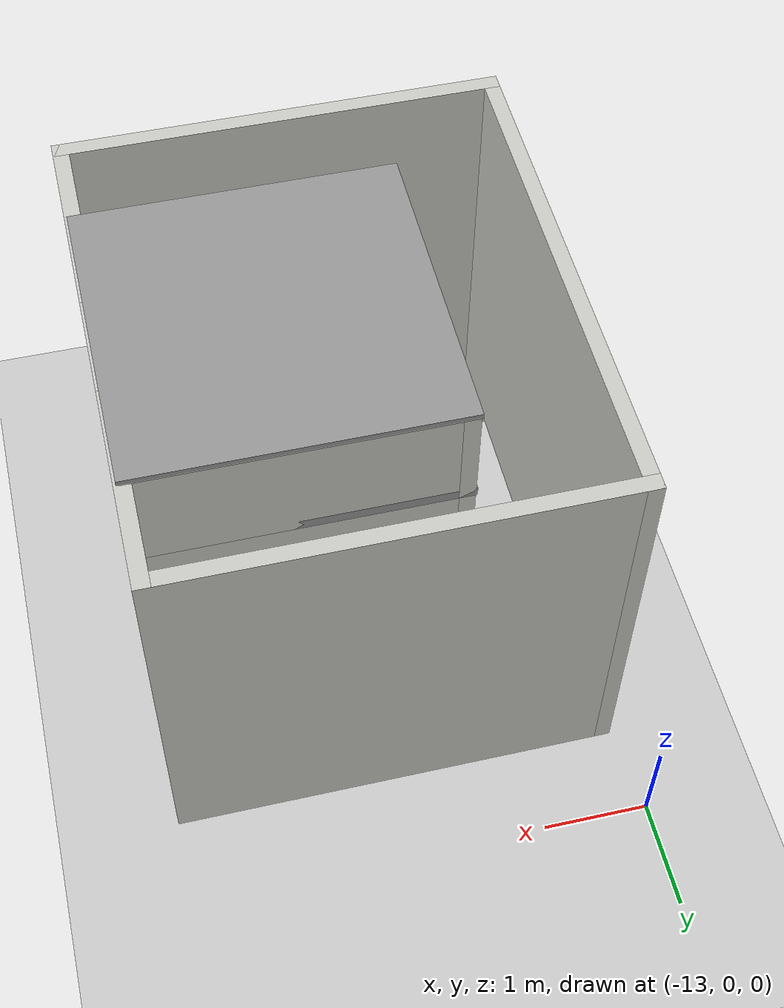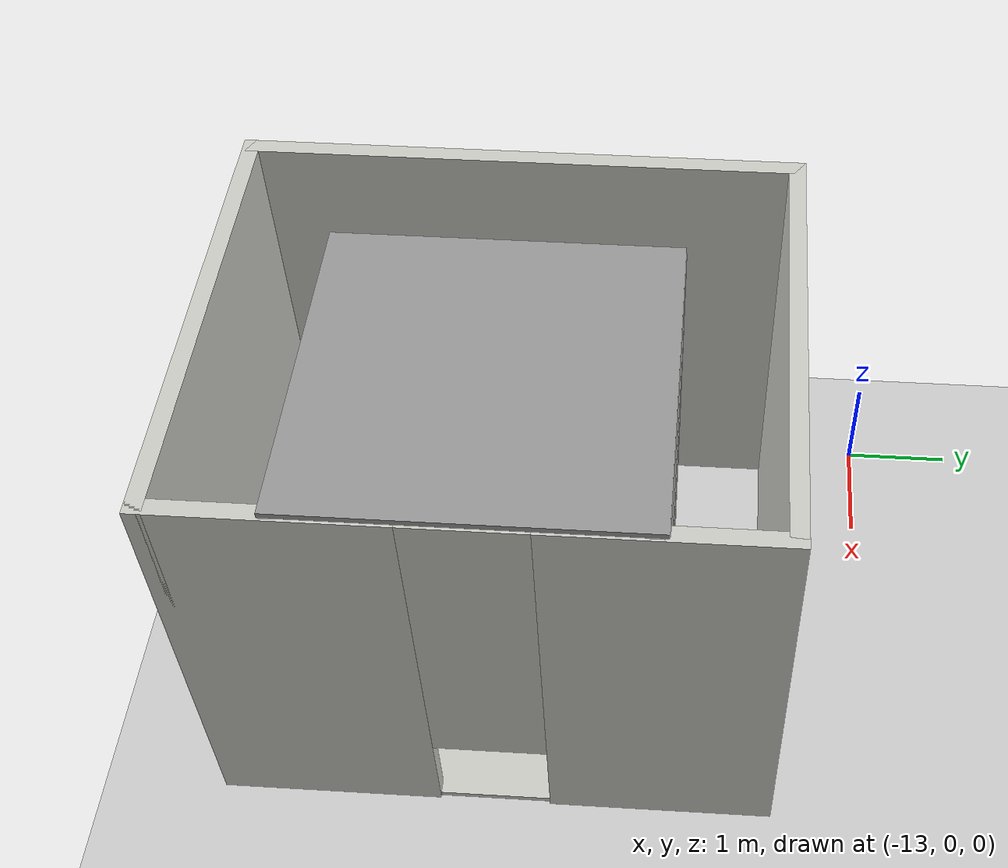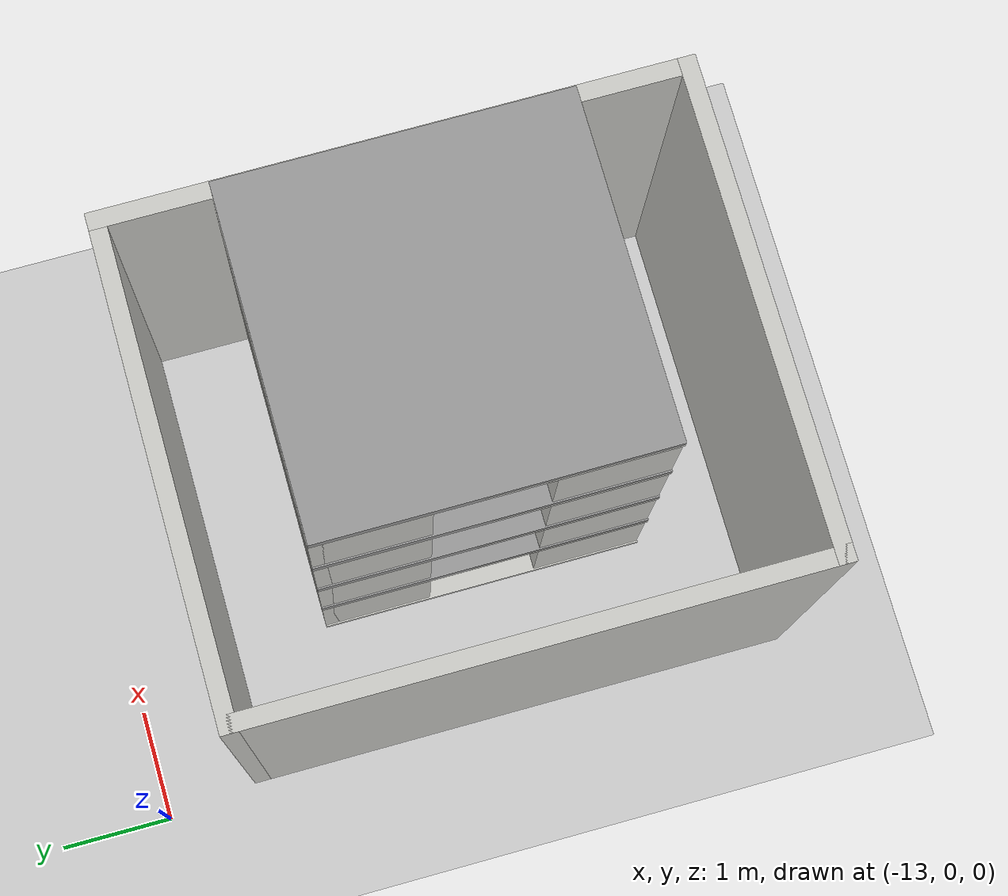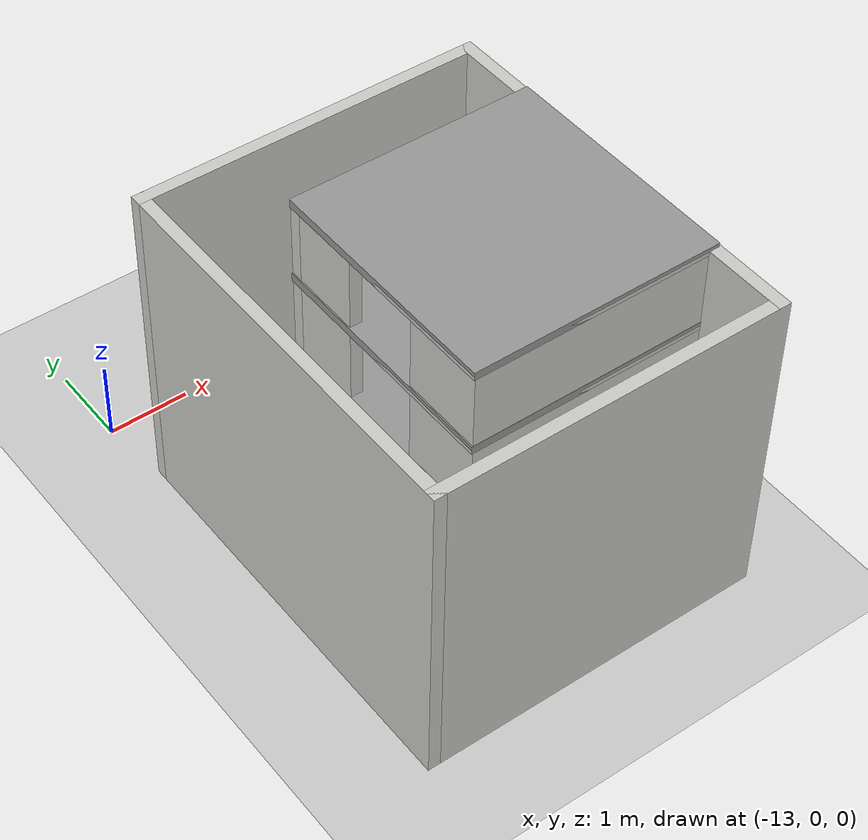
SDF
<sdf version="1.7">
 <world name="default">
  <model name="ground_plane">
   <static>1</static>
   <link name="link">
    <collision name="collision">
     <geometry><plane><normal>0 0 1</normal><size>100 100</size></plane></geometry>
     <surface><friction><ode><mu>100</mu><mu2>50</mu2></ode></friction></surface>
    </collision>
    <visual name="visual">
     <cast_shadows>0</cast_shadows>
     <geometry><plane><normal>0 0 1</normal><size>100 100</size></plane></geometry>
     <material>
      <script><uri>file://media/materials/scripts/gazebo.material</uri><name>Gazebo/Grey</name></script>
     </material>
    </visual>
   </link>
   <pose>-9.56672 -8.6074 0 0 -0 0</pose>
  </model>
  <model name="apart4">
   <pose>-8.28499 -5.32183 0 0 0 -1.57079</pose>
   <link name="Floor_10">
    <collision name="Floor_10_Collision">
     <geometry><box><size>3.005 3.015 0.1</size></box></geometry>
     <pose>0 0 0.05 0 -0 0</pose>
    </collision>
    <visual name="Floor_10_Visual">
     <pose>0 0 0.05 0 -0 0</pose>
     <geometry><box><size>3.005 3.015 0.1</size></box></geometry>
     <material>
      <script><uri>file://media/materials/scripts/gazebo.material</uri><name>Gazebo/Grey</name></script>
      <ambient>1 1 1 1</ambient>
     </material>
     <meta><layer>2</layer></meta>
    </visual>
    <pose>-1.995 -1.885 2 0 -0 0</pose>
   </link>
   <link name="Floor_11">
    <collision name="Floor_11_Collision">
     <geometry><box><size>3.005 3.015 0.1</size></box></geometry>
     <pose>0 0 0.05 0 -0 0</pose>
    </collision>
    <visual name="Floor_11_Visual">
     <pose>0 0 0.05 0 -0 0</pose>
     <geometry><box><size>3.005 3.015 0.1</size></box></geometry>
     <material>
      <script><uri>file://media/materials/scripts/gazebo.material</uri><name>Gazebo/Grey</name></script>
      <ambient>1 1 1 1</ambient>
     </material>
     <meta><layer>3</layer></meta>
    </visual>
    <pose>-1.995 -1.885 3 0 -0 0</pose>
   </link>
   <link name="Floor_12">
    <collision name="Floor_12_Collision">
     <geometry><box><size>3 3.01 0.1</size></box></geometry>
     <pose>0 0 0.05 0 -0 0</pose>
    </collision>
    <visual name="Floor_12_Visual">
     <pose>0 0 0.05 0 -0 0</pose>
     <geometry><box><size>3 3.01 0.1</size></box></geometry>
     <material>
      <script><uri>file://media/materials/scripts/gazebo.material</uri><name>Gazebo/Grey</name></script>
      <ambient>1 1 1 1</ambient>
     </material>
     <meta><layer>4</layer></meta>
    </visual>
    <pose>-1.9925 -1.8875 4 0 -0 0</pose>
   </link>
   <link name="Floor_9">
    <collision name="Floor_9_Collision">
     <geometry><box><size>3.005 3.015 0.1</size></box></geometry>
     <pose>0 0 0.05 0 -0 0</pose>
    </collision>
    <visual name="Floor_9_Visual">
     <pose>0 0 0.05 0 -0 0</pose>
     <geometry><box><size>3.005 3.015 0.1</size></box></geometry>
     <material>
      <script><uri>file://media/materials/scripts/gazebo.material</uri><name>Gazebo/Grey</name></script>
      <ambient>1 1 1 1</ambient>
     </material>
     <meta><layer>1</layer></meta>
    </visual>
    <pose>-1.995 -1.885 1 0 -0 0</pose>
   </link>
   <link name="Wall_100">
    <collision name="Wall_100_Collision">
     <geometry><box><size>3 0.15 1.05</size></box></geometry>
     <pose>0 0 0.525 0 -0 0</pose>
    </collision>
    <visual name="Wall_100_Visual">
     <pose>0 0 0.525 0 -0 0</pose>
     <geometry><box><size>3 0.15 1.05</size></box></geometry>
     <material>
      <script><uri>file://media/materials/scripts/gazebo.material</uri><name>Gazebo/CeilingTiled</name></script>
      <ambient>1 1 1 1</ambient>
     </material>
     <meta><layer>3</layer></meta>
    </visual>
    <pose>-0.5725 -1.8775 3 0 -0 1.5708</pose>
   </link>
   <link name="Wall_101">
    <collision name="Wall_101_Collision">
     <geometry><box><size>3 0.15 1.05</size></box></geometry>
     <pose>0 0 0.525 0 -0 0</pose>
    </collision>
    <visual name="Wall_101_Visual">
     <pose>0 0 0.525 0 -0 0</pose>
     <geometry><box><size>3 0.15 1.05</size></box></geometry>
     <material>
      <script><uri>file://media/materials/scripts/gazebo.material</uri><name>Gazebo/CeilingTiled</name></script>
      <ambient>1 1 1 1</ambient>
     </material>
     <meta><layer>3</layer></meta>
    </visual>
    <pose>-3.4225 -1.8775 3 0 -0 1.5708</pose>
   </link>
   <link name="Wall_102">
    <collision name="Wall_102_Collision">
     <geometry><box><size>1 0.15 1.05</size></box></geometry>
     <pose>0 0 0.525 0 -0 0</pose>
    </collision>
    <visual name="Wall_102_Visual">
     <pose>0 0 0.525 0 -0 0</pose>
     <geometry><box><size>1 0.15 1.05</size></box></geometry>
     <material>
      <script><uri>file://media/materials/scripts/gazebo.material</uri><name>Gazebo/CeilingTiled</name></script>
      <ambient>1 1 1 1</ambient>
     </material>
     <meta><layer>3</layer></meta>
    </visual>
    <pose>-2.9975 -3.3025 3 0 -0 0</pose>
   </link>
   <link name="Wall_103">
    <collision name="Wall_103_Collision">
     <geometry><box><size>1 0.15 1.05</size></box></geometry>
     <pose>0 0 0.525 0 -0 0</pose>
    </collision>
    <visual name="Wall_103_Visual">
     <pose>0 0 0.525 0 -0 0</pose>
     <geometry><box><size>1 0.15 1.05</size></box></geometry>
     <material>
      <script><uri>file://media/materials/scripts/gazebo.material</uri><name>Gazebo/CeilingTiled</name></script>
      <ambient>1 1 1 1</ambient>
     </material>
     <meta><layer>3</layer></meta>
    </visual>
    <pose>-0.9975 -3.3025 3 0 -0 3.14159</pose>
   </link>
   <link name="Wall_104">
    <collision name="Wall_104_Collision">
     <geometry><box><size>3.01 3 0.05</size></box></geometry>
     <pose>0 0 0.025 0 -0 0</pose>
    </collision>
    <visual name="Wall_104_Visual">
     <pose>0 0 0.025 0 -0 0</pose>
     <geometry><box><size>3.01 3 0.05</size></box></geometry>
     <material>
      <script><uri>file://media/materials/scripts/gazebo.material</uri><name>Gazebo/CeilingTiled</name></script>
      <ambient>1 1 1 1</ambient>
     </material>
     <meta><layer>4</layer></meta>
    </visual>
    <pose>-1.9925 -1.8875 4 0 -0 -1.5708</pose>
   </link>
   <link name="Wall_117">
    <pose>-1.9975 -0.4325 0 0 -0 0</pose>
    <visual name="Wall_117_Visual_0">
     <pose>-1.4975 0 2.025 0 -0 0</pose>
     <geometry><box><size>2.005 0.15 4.05</size></box></geometry>
     <material>
      <script><uri>file://media/materials/scripts/gazebo.material</uri><name>Gazebo/CeilingTiled</name></script>
      <ambient>0.760784 0.662745 0.627451 1</ambient>
     </material>
     <meta><layer>0</layer></meta>
    </visual>
    <collision name="Wall_117_Collision_0">
     <geometry><box><size>2.005 0.15 4.05</size></box></geometry>
     <pose>-1.4975 0 2.025 0 -0 0</pose>
    </collision>
    <visual name="Wall_117_Visual_1">
     <pose>1.5025 0 2.025 0 -0 0</pose>
     <geometry><box><size>1.995 0.15 4.05</size></box></geometry>
     <material>
      <script><uri>file://media/materials/scripts/gazebo.material</uri><name>Gazebo/CeilingTiled</name></script>
      <ambient>0.760784 0.662745 0.627451 1</ambient>
     </material>
     <meta><layer>0</layer></meta>
    </visual>
    <collision name="Wall_117_Collision_1">
     <geometry><box><size>1.995 0.15 4.05</size></box></geometry>
     <pose>1.5025 0 2.025 0 -0 0</pose>
    </collision>
    <visual name="Wall_117_Visual_2">
     <pose>0.005 0 2.475 0 -0 0</pose>
     <geometry><box><size>1 0.15 3.15</size></box></geometry>
     <material>
      <script><uri>file://media/materials/scripts/gazebo.material</uri><name>Gazebo/CeilingTiled</name></script>
      <ambient>0.760784 0.662745 0.627451 1</ambient>
     </material>
     <meta><layer>0</layer></meta>
    </visual>
    <collision name="Wall_117_Collision_2">
     <geometry><box><size>1 0.15 3.15</size></box></geometry>
     <pose>0.005 0 2.475 0 -0 0</pose>
    </collision>
   </link>
   <link name="Wall_118">
    <collision name="Wall_118_Collision">
     <geometry><box><size>4.25 0.15 4.05</size></box></geometry>
     <pose>0 0 2.025 0 -0 0</pose>
    </collision>
    <visual name="Wall_118_Visual">
     <pose>0 0 2.025 0 -0 0</pose>
     <geometry><box><size>4.25 0.15 4.05</size></box></geometry>
     <material>
      <script><uri>file://media/materials/scripts/gazebo.material</uri><name>Gazebo/CeilingTiled</name></script>
      <ambient>0.760784 0.662745 0.627451 1</ambient>
     </material>
     <meta><layer>0</layer></meta>
    </visual>
    <pose>0.4275 -2.4825 0 0 -0 -1.5708</pose>
   </link>
   <link name="Wall_119">
    <collision name="Wall_119_Collision">
     <geometry><box><size>5 0.15 4.05</size></box></geometry>
     <pose>0 0 2.025 0 -0 0</pose>
    </collision>
    <visual name="Wall_119_Visual">
     <pose>0 0 2.025 0 -0 0</pose>
     <geometry><box><size>5 0.15 4.05</size></box></geometry>
     <material>
      <script><uri>file://media/materials/scripts/gazebo.material</uri><name>Gazebo/CeilingTiled</name></script>
      <ambient>0.760784 0.662745 0.627451 1</ambient>
     </material>
     <meta><layer>0</layer></meta>
    </visual>
    <pose>-1.9975 -4.5325 0 0 -0 3.14159</pose>
   </link>
   <link name="Wall_120">
    <collision name="Wall_120_Collision">
     <geometry><box><size>4.25 0.15 4.05</size></box></geometry>
     <pose>0 0 2.025 0 -0 0</pose>
    </collision>
    <visual name="Wall_120_Visual">
     <pose>0 0 2.025 0 -0 0</pose>
     <geometry><box><size>4.25 0.15 4.05</size></box></geometry>
     <material>
      <script><uri>file://media/materials/scripts/gazebo.material</uri><name>Gazebo/CeilingTiled</name></script>
      <ambient>0.760784 0.662745 0.627451 1</ambient>
     </material>
     <meta><layer>0</layer></meta>
    </visual>
    <pose>-4.4225 -2.4825 0 0 -0 1.5708</pose>
   </link>
   <link name="Wall_71">
    <collision name="Wall_71_Collision">
     <geometry><box><size>3.01 3 0.05</size></box></geometry>
     <pose>0 0 0.025 0 -0 0</pose>
    </collision>
    <visual name="Wall_71_Visual">
     <pose>0 0 0.025 0 -0 0</pose>
     <geometry><box><size>3.01 3 0.05</size></box></geometry>
     <material>
      <script><uri>file://media/materials/scripts/gazebo.material</uri><name>Gazebo/CeilingTiled</name></script>
      <ambient>1 1 1 1</ambient>
     </material>
     <meta><layer>0</layer></meta>
    </visual>
    <pose>-1.9925 -1.8875 0 0 -0 -1.5708</pose>
   </link>
   <link name="Wall_73">
    <collision name="Wall_73_Collision">
     <geometry><box><size>3 0.15 1</size></box></geometry>
     <pose>0 0 0.5 0 -0 0</pose>
    </collision>
    <visual name="Wall_73_Visual">
     <pose>0 0 0.5 0 -0 0</pose>
     <geometry><box><size>3 0.15 1</size></box></geometry>
     <material>
      <script><uri>file://media/materials/scripts/gazebo.material</uri><name>Gazebo/CeilingTiled</name></script>
      <ambient>1 1 1 1</ambient>
     </material>
     <meta><layer>0</layer></meta>
    </visual>
    <pose>-0.5725 -1.8775 0 0 -0 1.5708</pose>
   </link>
   <link name="Wall_75">
    <collision name="Wall_75_Collision">
     <geometry><box><size>3 0.15 1</size></box></geometry>
     <pose>0 0 0.5 0 -0 0</pose>
    </collision>
    <visual name="Wall_75_Visual">
     <pose>0 0 0.5 0 -0 0</pose>
     <geometry><box><size>3 0.15 1</size></box></geometry>
     <material>
      <script><uri>file://media/materials/scripts/gazebo.material</uri><name>Gazebo/CeilingTiled</name></script>
      <ambient>1 1 1 1</ambient>
     </material>
     <meta><layer>0</layer></meta>
    </visual>
    <pose>-3.4225 -1.8775 0 0 -0 1.5708</pose>
   </link>
   <link name="Wall_85">
    <collision name="Wall_85_Collision">
     <geometry><box><size>1 0.15 1</size></box></geometry>
     <pose>0 0 0.5 0 -0 0</pose>
    </collision>
    <visual name="Wall_85_Visual">
     <pose>0 0 0.5 0 -0 0</pose>
     <geometry><box><size>1 0.15 1</size></box></geometry>
     <material>
      <script><uri>file://media/materials/scripts/gazebo.material</uri><name>Gazebo/CeilingTiled</name></script>
      <ambient>1 1 1 1</ambient>
     </material>
     <meta><layer>0</layer></meta>
    </visual>
    <pose>-2.9975 -3.3025 0 0 -0 0</pose>
   </link>
   <link name="Wall_87">
    <collision name="Wall_87_Collision">
     <geometry><box><size>1 0.15 1</size></box></geometry>
     <pose>0 0 0.5 0 -0 0</pose>
    </collision>
    <visual name="Wall_87_Visual">
     <pose>0 0 0.5 0 -0 0</pose>
     <geometry><box><size>1 0.15 1</size></box></geometry>
     <material>
      <script><uri>file://media/materials/scripts/gazebo.material</uri><name>Gazebo/CeilingTiled</name></script>
      <ambient>1 1 1 1</ambient>
     </material>
     <meta><layer>0</layer></meta>
    </visual>
    <pose>-0.9975 -3.3025 0 0 -0 3.14159</pose>
   </link>
   <link name="Wall_89">
    <collision name="Wall_89_Collision">
     <geometry><box><size>3.01 3 0.05</size></box></geometry>
     <pose>0 0 0.025 0 -0 0</pose>
    </collision>
    <visual name="Wall_89_Visual">
     <pose>0 0 0.025 0 -0 0</pose>
     <geometry><box><size>3.01 3 0.05</size></box></geometry>
     <material>
      <script><uri>file://media/materials/scripts/gazebo.material</uri><name>Gazebo/CeilingTiled</name></script>
      <ambient>1 1 1 1</ambient>
     </material>
     <meta><layer>1</layer></meta>
    </visual>
    <pose>-1.9925 -1.8875 1 0 -0 -1.5708</pose>
   </link>
   <link name="Wall_90">
    <collision name="Wall_90_Collision">
     <geometry><box><size>3 0.15 1</size></box></geometry>
     <pose>0 0 0.5 0 -0 0</pose>
    </collision>
    <visual name="Wall_90_Visual">
     <pose>0 0 0.5 0 -0 0</pose>
     <geometry><box><size>3 0.15 1</size></box></geometry>
     <material>
      <script><uri>file://media/materials/scripts/gazebo.material</uri><name>Gazebo/CeilingTiled</name></script>
      <ambient>1 1 1 1</ambient>
     </material>
     <meta><layer>1</layer></meta>
    </visual>
    <pose>-0.5725 -1.8775 1 0 -0 1.5708</pose>
   </link>
   <link name="Wall_91">
    <collision name="Wall_91_Collision">
     <geometry><box><size>3 0.15 1</size></box></geometry>
     <pose>0 0 0.5 0 -0 0</pose>
    </collision>
    <visual name="Wall_91_Visual">
     <pose>0 0 0.5 0 -0 0</pose>
     <geometry><box><size>3 0.15 1</size></box></geometry>
     <material>
      <script><uri>file://media/materials/scripts/gazebo.material</uri><name>Gazebo/CeilingTiled</name></script>
      <ambient>1 1 1 1</ambient>
     </material>
     <meta><layer>1</layer></meta>
    </visual>
    <pose>-3.4225 -1.8775 1 0 -0 1.5708</pose>
   </link>
   <link name="Wall_92">
    <collision name="Wall_92_Collision">
     <geometry><box><size>1 0.15 1</size></box></geometry>
     <pose>0 0 0.5 0 -0 0</pose>
    </collision>
    <visual name="Wall_92_Visual">
     <pose>0 0 0.5 0 -0 0</pose>
     <geometry><box><size>1 0.15 1</size></box></geometry>
     <material>
      <script><uri>file://media/materials/scripts/gazebo.material</uri><name>Gazebo/CeilingTiled</name></script>
      <ambient>1 1 1 1</ambient>
     </material>
     <meta><layer>1</layer></meta>
    </visual>
    <pose>-2.9975 -3.3025 1 0 -0 0</pose>
   </link>
   <link name="Wall_93">
    <collision name="Wall_93_Collision">
     <geometry><box><size>1 0.15 1</size></box></geometry>
     <pose>0 0 0.5 0 -0 0</pose>
    </collision>
    <visual name="Wall_93_Visual">
     <pose>0 0 0.5 0 -0 0</pose>
     <geometry><box><size>1 0.15 1</size></box></geometry>
     <material>
      <script><uri>file://media/materials/scripts/gazebo.material</uri><name>Gazebo/CeilingTiled</name></script>
      <ambient>1 1 1 1</ambient>
     </material>
     <meta><layer>1</layer></meta>
    </visual>
    <pose>-0.9975 -3.3025 1 0 -0 3.14159</pose>
   </link>
   <link name="Wall_94">
    <collision name="Wall_94_Collision">
     <geometry><box><size>3.01 3 0.05</size></box></geometry>
     <pose>0 0 0.025 0 -0 0</pose>
    </collision>
    <visual name="Wall_94_Visual">
     <pose>0 0 0.025 0 -0 0</pose>
     <geometry><box><size>3.01 3 0.05</size></box></geometry>
     <material>
      <script><uri>file://media/materials/scripts/gazebo.material</uri><name>Gazebo/CeilingTiled</name></script>
      <ambient>1 1 1 1</ambient>
     </material>
     <meta><layer>2</layer></meta>
    </visual>
    <pose>-1.9925 -1.8875 2 0 -0 -1.5708</pose>
   </link>
   <link name="Wall_95">
    <collision name="Wall_95_Collision">
     <geometry><box><size>3 0.15 1</size></box></geometry>
     <pose>0 0 0.5 0 -0 0</pose>
    </collision>
    <visual name="Wall_95_Visual">
     <pose>0 0 0.5 0 -0 0</pose>
     <geometry><box><size>3 0.15 1</size></box></geometry>
     <material>
      <script><uri>file://media/materials/scripts/gazebo.material</uri><name>Gazebo/CeilingTiled</name></script>
      <ambient>1 1 1 1</ambient>
     </material>
     <meta><layer>2</layer></meta>
    </visual>
    <pose>-0.5725 -1.8775 2 0 -0 1.5708</pose>
   </link>
   <link name="Wall_96">
    <collision name="Wall_96_Collision">
     <geometry><box><size>3 0.15 1</size></box></geometry>
     <pose>0 0 0.5 0 -0 0</pose>
    </collision>
    <visual name="Wall_96_Visual">
     <pose>0 0 0.5 0 -0 0</pose>
     <geometry><box><size>3 0.15 1</size></box></geometry>
     <material>
      <script><uri>file://media/materials/scripts/gazebo.material</uri><name>Gazebo/CeilingTiled</name></script>
      <ambient>1 1 1 1</ambient>
     </material>
     <meta><layer>2</layer></meta>
    </visual>
    <pose>-3.4225 -1.8775 2 0 -0 1.5708</pose>
   </link>
   <link name="Wall_97">
    <collision name="Wall_97_Collision">
     <geometry><box><size>1 0.15 1</size></box></geometry>
     <pose>0 0 0.5 0 -0 0</pose>
    </collision>
    <visual name="Wall_97_Visual">
     <pose>0 0 0.5 0 -0 0</pose>
     <geometry><box><size>1 0.15 1</size></box></geometry>
     <material>
      <script><uri>file://media/materials/scripts/gazebo.material</uri><name>Gazebo/CeilingTiled</name></script>
      <ambient>1 1 1 1</ambient>
     </material>
     <meta><layer>2</layer></meta>
    </visual>
    <pose>-2.9975 -3.3025 2 0 -0 0</pose>
   </link>
   <link name="Wall_98">
    <collision name="Wall_98_Collision">
     <geometry><box><size>1 0.15 1</size></box></geometry>
     <pose>0 0 0.5 0 -0 0</pose>
    </collision>
    <visual name="Wall_98_Visual">
     <pose>0 0 0.5 0 -0 0</pose>
     <geometry><box><size>1 0.15 1</size></box></geometry>
     <material>
      <script><uri>file://media/materials/scripts/gazebo.material</uri><name>Gazebo/CeilingTiled</name></script>
      <ambient>1 1 1 1</ambient>
     </material>
     <meta><layer>2</layer></meta>
    </visual>
    <pose>-0.9975 -3.3025 2 0 -0 3.14159</pose>
   </link>
   <link name="Wall_99">
    <collision name="Wall_99_Collision">
     <geometry><box><size>3.01 3 0.05</size></box></geometry>
     <pose>0 0 0.025 0 -0 0</pose>
    </collision>
    <visual name="Wall_99_Visual">
     <pose>0 0 0.025 0 -0 0</pose>
     <geometry><box><size>3.01 3 0.05</size></box></geometry>
     <material>
      <script><uri>file://media/materials/scripts/gazebo.material</uri><name>Gazebo/CeilingTiled</name></script>
      <ambient>1 1 1 1</ambient>
     </material>
     <meta><layer>3</layer></meta>
    </visual>
    <pose>-1.9925 -1.8875 3 0 -0 -1.5708</pose>
   </link>
   <static>1</static>
  </model>
 </world>
</sdf>
